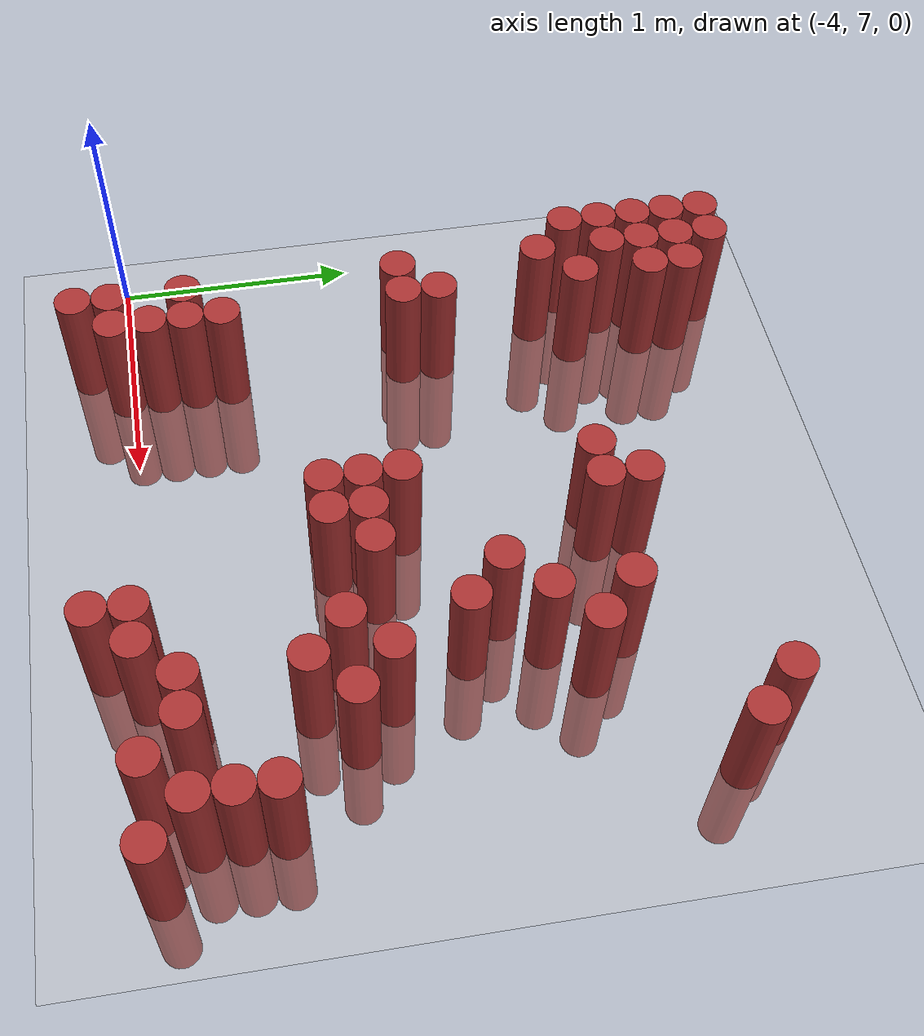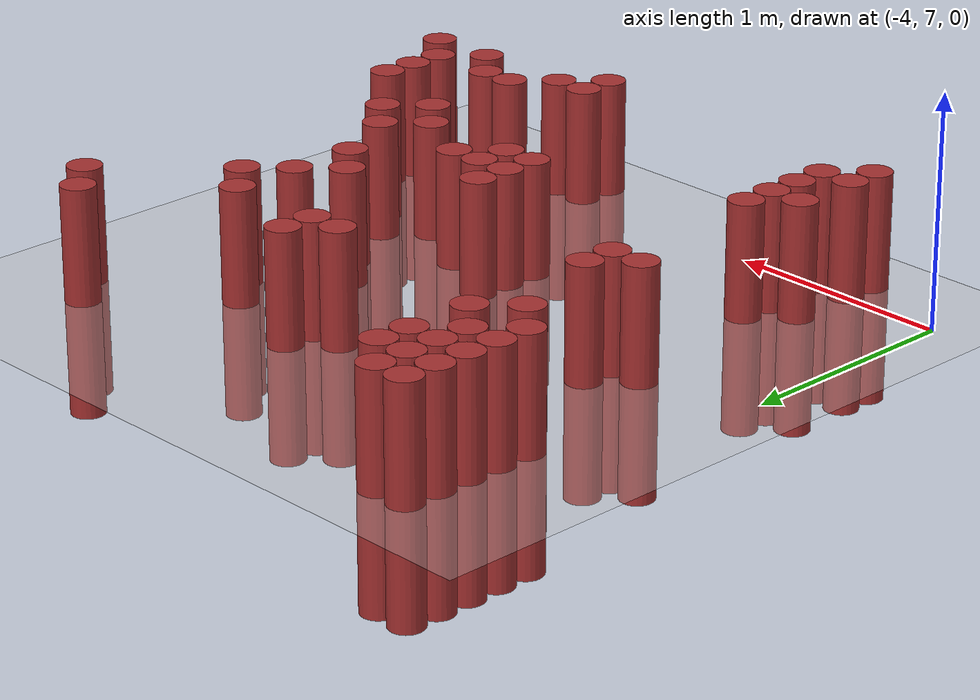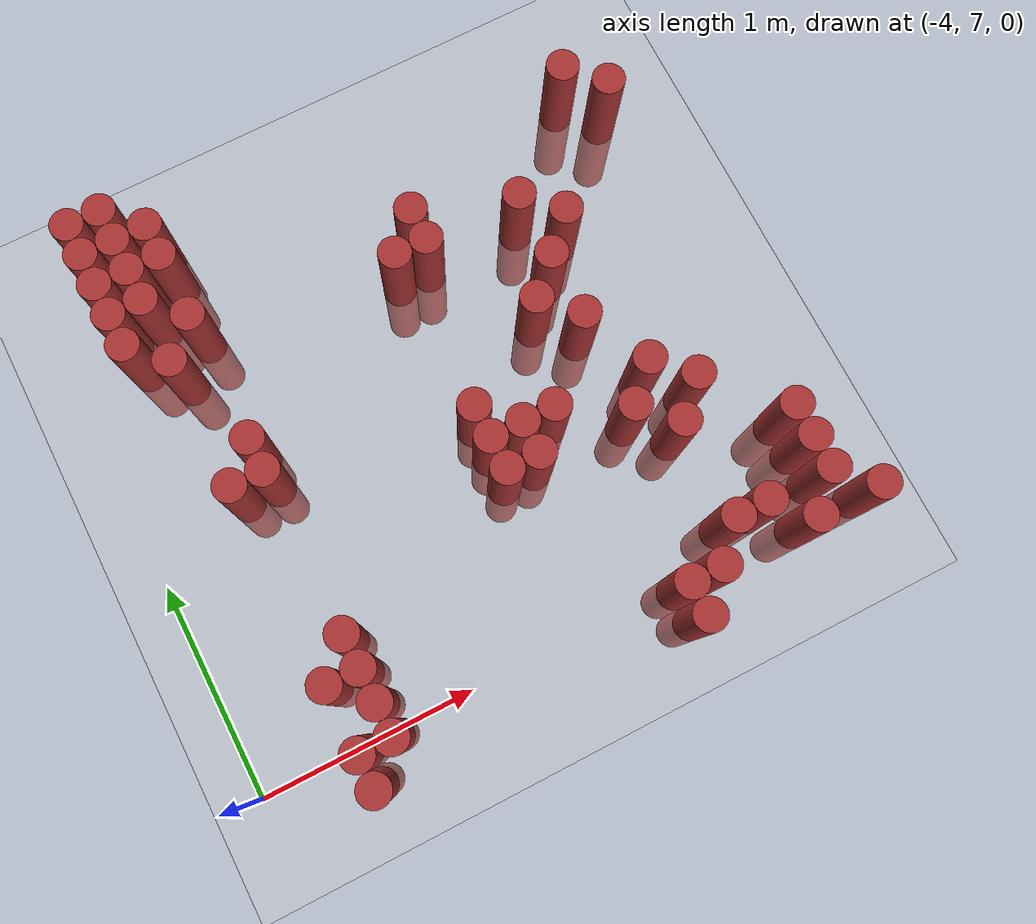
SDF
<sdf version="1.6">
 <world name="default">
  <model name="ground_plane">
   <static>1</static>
   <link name="link">
    <collision name="collision">
     <geometry><plane><normal>0 0 1</normal><size>100 100</size></plane></geometry>
     <surface><friction><ode><mu>100</mu><mu2>50</mu2></ode></friction></surface>
    </collision>
    <visual name="visual">
     <cast_shadows>0</cast_shadows>
     <geometry><plane><normal>0 0 1</normal><size>100 100</size></plane></geometry>
     <material>
      <script><uri>file://media/materials/scripts/gazebo.material</uri><name>Gazebo/Grey</name></script>
     </material>
    </visual>
   </link>
  </model>
  <model name="unit_cylinder_184">
   <static>1</static>
   <pose>-3.675000 8.925000 0.000000 0.000000 0.000000 0.000000</pose>
   <link name="link">
    <inertial>
     <mass>1</mass>
     <inertia><ixx>0.145833</ixx><ixy>0</ixy><ixz>0</ixz><iyy>0.145833</iyy><iyz>0</iyz><izz>0.125</izz></inertia>
    </inertial>
    <collision name="collision">
     <geometry><cylinder><radius>0.075000</radius><length>1</length></cylinder></geometry>
    </collision>
    <visual name="visual">
     <geometry><cylinder><radius>0.075000</radius><length>1</length></cylinder></geometry>
     <material>
      <ambient>0.648000 0.192000 0.192000 1</ambient>
      <diffuse>0.648000 0.192000 0.192000 1</diffuse>
     </material>
     <material>
      <script><name>Gazebo/Grey</name><uri>file://media/materials/scripts/gazebo.material</uri></script>
     </material>
    </visual>
   </link>
  </model>
  <model name="unit_cylinder_185">
   <static>1</static>
   <pose>-3.675000 9.075000 0.000000 0.000000 0.000000 0.000000</pose>
   <link name="link">
    <inertial>
     <mass>1</mass>
     <inertia><ixx>0.145833</ixx><ixy>0</ixy><ixz>0</ixz><iyy>0.145833</iyy><iyz>0</iyz><izz>0.125</izz></inertia>
    </inertial>
    <collision name="collision">
     <geometry><cylinder><radius>0.075000</radius><length>1</length></cylinder></geometry>
    </collision>
    <visual name="visual">
     <geometry><cylinder><radius>0.075000</radius><length>1</length></cylinder></geometry>
     <material>
      <ambient>0.648000 0.192000 0.192000 1</ambient>
      <diffuse>0.648000 0.192000 0.192000 1</diffuse>
     </material>
     <material>
      <script><name>Gazebo/Grey</name><uri>file://media/materials/scripts/gazebo.material</uri></script>
     </material>
    </visual>
   </link>
  </model>
  <model name="unit_cylinder_186">
   <static>1</static>
   <pose>-3.675000 9.225000 0.000000 0.000000 0.000000 0.000000</pose>
   <link name="link">
    <inertial>
     <mass>1</mass>
     <inertia><ixx>0.145833</ixx><ixy>0</ixy><ixz>0</ixz><iyy>0.145833</iyy><iyz>0</iyz><izz>0.125</izz></inertia>
    </inertial>
    <collision name="collision">
     <geometry><cylinder><radius>0.075000</radius><length>1</length></cylinder></geometry>
    </collision>
    <visual name="visual">
     <geometry><cylinder><radius>0.075000</radius><length>1</length></cylinder></geometry>
     <material>
      <ambient>0.648000 0.192000 0.192000 1</ambient>
      <diffuse>0.648000 0.192000 0.192000 1</diffuse>
     </material>
     <material>
      <script><name>Gazebo/Grey</name><uri>file://media/materials/scripts/gazebo.material</uri></script>
     </material>
    </visual>
   </link>
  </model>
  <model name="unit_cylinder_187">
   <static>1</static>
   <pose>-3.675000 9.375000 0.000000 0.000000 0.000000 0.000000</pose>
   <link name="link">
    <inertial>
     <mass>1</mass>
     <inertia><ixx>0.145833</ixx><ixy>0</ixy><ixz>0</ixz><iyy>0.145833</iyy><iyz>0</iyz><izz>0.125</izz></inertia>
    </inertial>
    <collision name="collision">
     <geometry><cylinder><radius>0.075000</radius><length>1</length></cylinder></geometry>
    </collision>
    <visual name="visual">
     <geometry><cylinder><radius>0.075000</radius><length>1</length></cylinder></geometry>
     <material>
      <ambient>0.648000 0.192000 0.192000 1</ambient>
      <diffuse>0.648000 0.192000 0.192000 1</diffuse>
     </material>
     <material>
      <script><name>Gazebo/Grey</name><uri>file://media/materials/scripts/gazebo.material</uri></script>
     </material>
    </visual>
   </link>
  </model>
  <model name="unit_cylinder_188">
   <static>1</static>
   <pose>-3.675000 9.525000 0.000000 0.000000 0.000000 0.000000</pose>
   <link name="link">
    <inertial>
     <mass>1</mass>
     <inertia><ixx>0.145833</ixx><ixy>0</ixy><ixz>0</ixz><iyy>0.145833</iyy><iyz>0</iyz><izz>0.125</izz></inertia>
    </inertial>
    <collision name="collision">
     <geometry><cylinder><radius>0.075000</radius><length>1</length></cylinder></geometry>
    </collision>
    <visual name="visual">
     <geometry><cylinder><radius>0.075000</radius><length>1</length></cylinder></geometry>
     <material>
      <ambient>0.648000 0.192000 0.192000 1</ambient>
      <diffuse>0.648000 0.192000 0.192000 1</diffuse>
     </material>
     <material>
      <script><name>Gazebo/Grey</name><uri>file://media/materials/scripts/gazebo.material</uri></script>
     </material>
    </visual>
   </link>
  </model>
  <model name="unit_cylinder_193">
   <static>1</static>
   <pose>-3.525000 6.825000 0.000000 0.000000 0.000000 0.000000</pose>
   <link name="link">
    <inertial>
     <mass>1</mass>
     <inertia><ixx>0.145833</ixx><ixy>0</ixy><ixz>0</ixz><iyy>0.145833</iyy><iyz>0</iyz><izz>0.125</izz></inertia>
    </inertial>
    <collision name="collision">
     <geometry><cylinder><radius>0.075000</radius><length>1</length></cylinder></geometry>
    </collision>
    <visual name="visual">
     <geometry><cylinder><radius>0.075000</radius><length>1</length></cylinder></geometry>
     <material>
      <ambient>0.648000 0.192000 0.192000 1</ambient>
      <diffuse>0.648000 0.192000 0.192000 1</diffuse>
     </material>
     <material>
      <script><name>Gazebo/Grey</name><uri>file://media/materials/scripts/gazebo.material</uri></script>
     </material>
    </visual>
   </link>
  </model>
  <model name="unit_cylinder_194">
   <static>1</static>
   <pose>-3.525000 6.975000 0.000000 0.000000 0.000000 0.000000</pose>
   <link name="link">
    <inertial>
     <mass>1</mass>
     <inertia><ixx>0.145833</ixx><ixy>0</ixy><ixz>0</ixz><iyy>0.145833</iyy><iyz>0</iyz><izz>0.125</izz></inertia>
    </inertial>
    <collision name="collision">
     <geometry><cylinder><radius>0.075000</radius><length>1</length></cylinder></geometry>
    </collision>
    <visual name="visual">
     <geometry><cylinder><radius>0.075000</radius><length>1</length></cylinder></geometry>
     <material>
      <ambient>0.648000 0.192000 0.192000 1</ambient>
      <diffuse>0.648000 0.192000 0.192000 1</diffuse>
     </material>
     <material>
      <script><name>Gazebo/Grey</name><uri>file://media/materials/scripts/gazebo.material</uri></script>
     </material>
    </visual>
   </link>
  </model>
  <model name="unit_cylinder_195">
   <static>1</static>
   <pose>-3.525000 7.275000 0.000000 0.000000 0.000000 0.000000</pose>
   <link name="link">
    <inertial>
     <mass>1</mass>
     <inertia><ixx>0.145833</ixx><ixy>0</ixy><ixz>0</ixz><iyy>0.145833</iyy><iyz>0</iyz><izz>0.125</izz></inertia>
    </inertial>
    <collision name="collision">
     <geometry><cylinder><radius>0.075000</radius><length>1</length></cylinder></geometry>
    </collision>
    <visual name="visual">
     <geometry><cylinder><radius>0.075000</radius><length>1</length></cylinder></geometry>
     <material>
      <ambient>0.648000 0.192000 0.192000 1</ambient>
      <diffuse>0.648000 0.192000 0.192000 1</diffuse>
     </material>
     <material>
      <script><name>Gazebo/Grey</name><uri>file://media/materials/scripts/gazebo.material</uri></script>
     </material>
    </visual>
   </link>
  </model>
  <model name="unit_cylinder_196">
   <static>1</static>
   <pose>-3.525000 8.175000 0.000000 0.000000 0.000000 0.000000</pose>
   <link name="link">
    <inertial>
     <mass>1</mass>
     <inertia><ixx>0.145833</ixx><ixy>0</ixy><ixz>0</ixz><iyy>0.145833</iyy><iyz>0</iyz><izz>0.125</izz></inertia>
    </inertial>
    <collision name="collision">
     <geometry><cylinder><radius>0.075000</radius><length>1</length></cylinder></geometry>
    </collision>
    <visual name="visual">
     <geometry><cylinder><radius>0.075000</radius><length>1</length></cylinder></geometry>
     <material>
      <ambient>0.648000 0.192000 0.192000 1</ambient>
      <diffuse>0.648000 0.192000 0.192000 1</diffuse>
     </material>
     <material>
      <script><name>Gazebo/Grey</name><uri>file://media/materials/scripts/gazebo.material</uri></script>
     </material>
    </visual>
   </link>
  </model>
  <model name="unit_cylinder_197">
   <static>1</static>
   <pose>-3.525000 8.775000 0.000000 0.000000 0.000000 0.000000</pose>
   <link name="link">
    <inertial>
     <mass>1</mass>
     <inertia><ixx>0.145833</ixx><ixy>0</ixy><ixz>0</ixz><iyy>0.145833</iyy><iyz>0</iyz><izz>0.125</izz></inertia>
    </inertial>
    <collision name="collision">
     <geometry><cylinder><radius>0.075000</radius><length>1</length></cylinder></geometry>
    </collision>
    <visual name="visual">
     <geometry><cylinder><radius>0.075000</radius><length>1</length></cylinder></geometry>
     <material>
      <ambient>0.648000 0.192000 0.192000 1</ambient>
      <diffuse>0.648000 0.192000 0.192000 1</diffuse>
     </material>
     <material>
      <script><name>Gazebo/Grey</name><uri>file://media/materials/scripts/gazebo.material</uri></script>
     </material>
    </visual>
   </link>
  </model>
  <model name="unit_cylinder_198">
   <static>1</static>
   <pose>-3.525000 9.075000 0.000000 0.000000 0.000000 0.000000</pose>
   <link name="link">
    <inertial>
     <mass>1</mass>
     <inertia><ixx>0.145833</ixx><ixy>0</ixy><ixz>0</ixz><iyy>0.145833</iyy><iyz>0</iyz><izz>0.125</izz></inertia>
    </inertial>
    <collision name="collision">
     <geometry><cylinder><radius>0.075000</radius><length>1</length></cylinder></geometry>
    </collision>
    <visual name="visual">
     <geometry><cylinder><radius>0.075000</radius><length>1</length></cylinder></geometry>
     <material>
      <ambient>0.648000 0.192000 0.192000 1</ambient>
      <diffuse>0.648000 0.192000 0.192000 1</diffuse>
     </material>
     <material>
      <script><name>Gazebo/Grey</name><uri>file://media/materials/scripts/gazebo.material</uri></script>
     </material>
    </visual>
   </link>
  </model>
  <model name="unit_cylinder_199">
   <static>1</static>
   <pose>-3.525000 9.225000 0.000000 0.000000 0.000000 0.000000</pose>
   <link name="link">
    <inertial>
     <mass>1</mass>
     <inertia><ixx>0.145833</ixx><ixy>0</ixy><ixz>0</ixz><iyy>0.145833</iyy><iyz>0</iyz><izz>0.125</izz></inertia>
    </inertial>
    <collision name="collision">
     <geometry><cylinder><radius>0.075000</radius><length>1</length></cylinder></geometry>
    </collision>
    <visual name="visual">
     <geometry><cylinder><radius>0.075000</radius><length>1</length></cylinder></geometry>
     <material>
      <ambient>0.648000 0.192000 0.192000 1</ambient>
      <diffuse>0.648000 0.192000 0.192000 1</diffuse>
     </material>
     <material>
      <script><name>Gazebo/Grey</name><uri>file://media/materials/scripts/gazebo.material</uri></script>
     </material>
    </visual>
   </link>
  </model>
  <model name="unit_cylinder_200">
   <static>1</static>
   <pose>-3.525000 9.375000 0.000000 0.000000 0.000000 0.000000</pose>
   <link name="link">
    <inertial>
     <mass>1</mass>
     <inertia><ixx>0.145833</ixx><ixy>0</ixy><ixz>0</ixz><iyy>0.145833</iyy><iyz>0</iyz><izz>0.125</izz></inertia>
    </inertial>
    <collision name="collision">
     <geometry><cylinder><radius>0.075000</radius><length>1</length></cylinder></geometry>
    </collision>
    <visual name="visual">
     <geometry><cylinder><radius>0.075000</radius><length>1</length></cylinder></geometry>
     <material>
      <ambient>0.648000 0.192000 0.192000 1</ambient>
      <diffuse>0.648000 0.192000 0.192000 1</diffuse>
     </material>
     <material>
      <script><name>Gazebo/Grey</name><uri>file://media/materials/scripts/gazebo.material</uri></script>
     </material>
    </visual>
   </link>
  </model>
  <model name="unit_cylinder_201">
   <static>1</static>
   <pose>-3.525000 9.525000 0.000000 0.000000 0.000000 0.000000</pose>
   <link name="link">
    <inertial>
     <mass>1</mass>
     <inertia><ixx>0.145833</ixx><ixy>0</ixy><ixz>0</ixz><iyy>0.145833</iyy><iyz>0</iyz><izz>0.125</izz></inertia>
    </inertial>
    <collision name="collision">
     <geometry><cylinder><radius>0.075000</radius><length>1</length></cylinder></geometry>
    </collision>
    <visual name="visual">
     <geometry><cylinder><radius>0.075000</radius><length>1</length></cylinder></geometry>
     <material>
      <ambient>0.648000 0.192000 0.192000 1</ambient>
      <diffuse>0.648000 0.192000 0.192000 1</diffuse>
     </material>
     <material>
      <script><name>Gazebo/Grey</name><uri>file://media/materials/scripts/gazebo.material</uri></script>
     </material>
    </visual>
   </link>
  </model>
  <model name="unit_cylinder_203">
   <static>1</static>
   <pose>-3.375000 6.975000 0.000000 0.000000 0.000000 0.000000</pose>
   <link name="link">
    <inertial>
     <mass>1</mass>
     <inertia><ixx>0.145833</ixx><ixy>0</ixy><ixz>0</ixz><iyy>0.145833</iyy><iyz>0</iyz><izz>0.125</izz></inertia>
    </inertial>
    <collision name="collision">
     <geometry><cylinder><radius>0.075000</radius><length>1</length></cylinder></geometry>
    </collision>
    <visual name="visual">
     <geometry><cylinder><radius>0.075000</radius><length>1</length></cylinder></geometry>
     <material>
      <ambient>0.648000 0.192000 0.192000 1</ambient>
      <diffuse>0.648000 0.192000 0.192000 1</diffuse>
     </material>
     <material>
      <script><name>Gazebo/Grey</name><uri>file://media/materials/scripts/gazebo.material</uri></script>
     </material>
    </visual>
   </link>
  </model>
  <model name="unit_cylinder_204">
   <static>1</static>
   <pose>-3.375000 7.125000 0.000000 0.000000 0.000000 0.000000</pose>
   <link name="link">
    <inertial>
     <mass>1</mass>
     <inertia><ixx>0.145833</ixx><ixy>0</ixy><ixz>0</ixz><iyy>0.145833</iyy><iyz>0</iyz><izz>0.125</izz></inertia>
    </inertial>
    <collision name="collision">
     <geometry><cylinder><radius>0.075000</radius><length>1</length></cylinder></geometry>
    </collision>
    <visual name="visual">
     <geometry><cylinder><radius>0.075000</radius><length>1</length></cylinder></geometry>
     <material>
      <ambient>0.648000 0.192000 0.192000 1</ambient>
      <diffuse>0.648000 0.192000 0.192000 1</diffuse>
     </material>
     <material>
      <script><name>Gazebo/Grey</name><uri>file://media/materials/scripts/gazebo.material</uri></script>
     </material>
    </visual>
   </link>
  </model>
  <model name="unit_cylinder_205">
   <static>1</static>
   <pose>-3.375000 7.275000 0.000000 0.000000 0.000000 0.000000</pose>
   <link name="link">
    <inertial>
     <mass>1</mass>
     <inertia><ixx>0.145833</ixx><ixy>0</ixy><ixz>0</ixz><iyy>0.145833</iyy><iyz>0</iyz><izz>0.125</izz></inertia>
    </inertial>
    <collision name="collision">
     <geometry><cylinder><radius>0.075000</radius><length>1</length></cylinder></geometry>
    </collision>
    <visual name="visual">
     <geometry><cylinder><radius>0.075000</radius><length>1</length></cylinder></geometry>
     <material>
      <ambient>0.648000 0.192000 0.192000 1</ambient>
      <diffuse>0.648000 0.192000 0.192000 1</diffuse>
     </material>
     <material>
      <script><name>Gazebo/Grey</name><uri>file://media/materials/scripts/gazebo.material</uri></script>
     </material>
    </visual>
   </link>
  </model>
  <model name="unit_cylinder_206">
   <static>1</static>
   <pose>-3.375000 7.425000 0.000000 0.000000 0.000000 0.000000</pose>
   <link name="link">
    <inertial>
     <mass>1</mass>
     <inertia><ixx>0.145833</ixx><ixy>0</ixy><ixz>0</ixz><iyy>0.145833</iyy><iyz>0</iyz><izz>0.125</izz></inertia>
    </inertial>
    <collision name="collision">
     <geometry><cylinder><radius>0.075000</radius><length>1</length></cylinder></geometry>
    </collision>
    <visual name="visual">
     <geometry><cylinder><radius>0.075000</radius><length>1</length></cylinder></geometry>
     <material>
      <ambient>0.648000 0.192000 0.192000 1</ambient>
      <diffuse>0.648000 0.192000 0.192000 1</diffuse>
     </material>
     <material>
      <script><name>Gazebo/Grey</name><uri>file://media/materials/scripts/gazebo.material</uri></script>
     </material>
    </visual>
   </link>
  </model>
  <model name="unit_cylinder_207">
   <static>1</static>
   <pose>-3.375000 8.175000 0.000000 0.000000 0.000000 0.000000</pose>
   <link name="link">
    <inertial>
     <mass>1</mass>
     <inertia><ixx>0.145833</ixx><ixy>0</ixy><ixz>0</ixz><iyy>0.145833</iyy><iyz>0</iyz><izz>0.125</izz></inertia>
    </inertial>
    <collision name="collision">
     <geometry><cylinder><radius>0.075000</radius><length>1</length></cylinder></geometry>
    </collision>
    <visual name="visual">
     <geometry><cylinder><radius>0.075000</radius><length>1</length></cylinder></geometry>
     <material>
      <ambient>0.648000 0.192000 0.192000 1</ambient>
      <diffuse>0.648000 0.192000 0.192000 1</diffuse>
     </material>
     <material>
      <script><name>Gazebo/Grey</name><uri>file://media/materials/scripts/gazebo.material</uri></script>
     </material>
    </visual>
   </link>
  </model>
  <model name="unit_cylinder_208">
   <static>1</static>
   <pose>-3.375000 8.325000 0.000000 0.000000 0.000000 0.000000</pose>
   <link name="link">
    <inertial>
     <mass>1</mass>
     <inertia><ixx>0.145833</ixx><ixy>0</ixy><ixz>0</ixz><iyy>0.145833</iyy><iyz>0</iyz><izz>0.125</izz></inertia>
    </inertial>
    <collision name="collision">
     <geometry><cylinder><radius>0.075000</radius><length>1</length></cylinder></geometry>
    </collision>
    <visual name="visual">
     <geometry><cylinder><radius>0.075000</radius><length>1</length></cylinder></geometry>
     <material>
      <ambient>0.648000 0.192000 0.192000 1</ambient>
      <diffuse>0.648000 0.192000 0.192000 1</diffuse>
     </material>
     <material>
      <script><name>Gazebo/Grey</name><uri>file://media/materials/scripts/gazebo.material</uri></script>
     </material>
    </visual>
   </link>
  </model>
  <model name="unit_cylinder_209">
   <static>1</static>
   <pose>-3.375000 8.925000 0.000000 0.000000 0.000000 0.000000</pose>
   <link name="link">
    <inertial>
     <mass>1</mass>
     <inertia><ixx>0.145833</ixx><ixy>0</ixy><ixz>0</ixz><iyy>0.145833</iyy><iyz>0</iyz><izz>0.125</izz></inertia>
    </inertial>
    <collision name="collision">
     <geometry><cylinder><radius>0.075000</radius><length>1</length></cylinder></geometry>
    </collision>
    <visual name="visual">
     <geometry><cylinder><radius>0.075000</radius><length>1</length></cylinder></geometry>
     <material>
      <ambient>0.648000 0.192000 0.192000 1</ambient>
      <diffuse>0.648000 0.192000 0.192000 1</diffuse>
     </material>
     <material>
      <script><name>Gazebo/Grey</name><uri>file://media/materials/scripts/gazebo.material</uri></script>
     </material>
    </visual>
   </link>
  </model>
  <model name="unit_cylinder_210">
   <static>1</static>
   <pose>-3.375000 9.225000 0.000000 0.000000 0.000000 0.000000</pose>
   <link name="link">
    <inertial>
     <mass>1</mass>
     <inertia><ixx>0.145833</ixx><ixy>0</ixy><ixz>0</ixz><iyy>0.145833</iyy><iyz>0</iyz><izz>0.125</izz></inertia>
    </inertial>
    <collision name="collision">
     <geometry><cylinder><radius>0.075000</radius><length>1</length></cylinder></geometry>
    </collision>
    <visual name="visual">
     <geometry><cylinder><radius>0.075000</radius><length>1</length></cylinder></geometry>
     <material>
      <ambient>0.648000 0.192000 0.192000 1</ambient>
      <diffuse>0.648000 0.192000 0.192000 1</diffuse>
     </material>
     <material>
      <script><name>Gazebo/Grey</name><uri>file://media/materials/scripts/gazebo.material</uri></script>
     </material>
    </visual>
   </link>
  </model>
  <model name="unit_cylinder_211">
   <static>1</static>
   <pose>-3.375000 9.375000 0.000000 0.000000 0.000000 0.000000</pose>
   <link name="link">
    <inertial>
     <mass>1</mass>
     <inertia><ixx>0.145833</ixx><ixy>0</ixy><ixz>0</ixz><iyy>0.145833</iyy><iyz>0</iyz><izz>0.125</izz></inertia>
    </inertial>
    <collision name="collision">
     <geometry><cylinder><radius>0.075000</radius><length>1</length></cylinder></geometry>
    </collision>
    <visual name="visual">
     <geometry><cylinder><radius>0.075000</radius><length>1</length></cylinder></geometry>
     <material>
      <ambient>0.648000 0.192000 0.192000 1</ambient>
      <diffuse>0.648000 0.192000 0.192000 1</diffuse>
     </material>
     <material>
      <script><name>Gazebo/Grey</name><uri>file://media/materials/scripts/gazebo.material</uri></script>
     </material>
    </visual>
   </link>
  </model>
  <model name="unit_cylinder_218">
   <static>1</static>
   <pose>-2.475000 7.725000 0.000000 0.000000 0.000000 0.000000</pose>
   <link name="link">
    <inertial>
     <mass>1</mass>
     <inertia><ixx>0.145833</ixx><ixy>0</ixy><ixz>0</ixz><iyy>0.145833</iyy><iyz>0</iyz><izz>0.125</izz></inertia>
    </inertial>
    <collision name="collision">
     <geometry><cylinder><radius>0.075000</radius><length>1</length></cylinder></geometry>
    </collision>
    <visual name="visual">
     <geometry><cylinder><radius>0.075000</radius><length>1</length></cylinder></geometry>
     <material>
      <ambient>0.648000 0.192000 0.192000 1</ambient>
      <diffuse>0.648000 0.192000 0.192000 1</diffuse>
     </material>
     <material>
      <script><name>Gazebo/Grey</name><uri>file://media/materials/scripts/gazebo.material</uri></script>
     </material>
    </visual>
   </link>
  </model>
  <model name="unit_cylinder_219">
   <static>1</static>
   <pose>-2.475000 7.875000 0.000000 0.000000 0.000000 0.000000</pose>
   <link name="link">
    <inertial>
     <mass>1</mass>
     <inertia><ixx>0.145833</ixx><ixy>0</ixy><ixz>0</ixz><iyy>0.145833</iyy><iyz>0</iyz><izz>0.125</izz></inertia>
    </inertial>
    <collision name="collision">
     <geometry><cylinder><radius>0.075000</radius><length>1</length></cylinder></geometry>
    </collision>
    <visual name="visual">
     <geometry><cylinder><radius>0.075000</radius><length>1</length></cylinder></geometry>
     <material>
      <ambient>0.648000 0.192000 0.192000 1</ambient>
      <diffuse>0.648000 0.192000 0.192000 1</diffuse>
     </material>
     <material>
      <script><name>Gazebo/Grey</name><uri>file://media/materials/scripts/gazebo.material</uri></script>
     </material>
    </visual>
   </link>
  </model>
  <model name="unit_cylinder_220">
   <static>1</static>
   <pose>-2.475000 8.025000 0.000000 0.000000 0.000000 0.000000</pose>
   <link name="link">
    <inertial>
     <mass>1</mass>
     <inertia><ixx>0.145833</ixx><ixy>0</ixy><ixz>0</ixz><iyy>0.145833</iyy><iyz>0</iyz><izz>0.125</izz></inertia>
    </inertial>
    <collision name="collision">
     <geometry><cylinder><radius>0.075000</radius><length>1</length></cylinder></geometry>
    </collision>
    <visual name="visual">
     <geometry><cylinder><radius>0.075000</radius><length>1</length></cylinder></geometry>
     <material>
      <ambient>0.648000 0.192000 0.192000 1</ambient>
      <diffuse>0.648000 0.192000 0.192000 1</diffuse>
     </material>
     <material>
      <script><name>Gazebo/Grey</name><uri>file://media/materials/scripts/gazebo.material</uri></script>
     </material>
    </visual>
   </link>
  </model>
  <model name="unit_cylinder_221">
   <static>1</static>
   <pose>-2.475000 8.775000 0.000000 0.000000 0.000000 0.000000</pose>
   <link name="link">
    <inertial>
     <mass>1</mass>
     <inertia><ixx>0.145833</ixx><ixy>0</ixy><ixz>0</ixz><iyy>0.145833</iyy><iyz>0</iyz><izz>0.125</izz></inertia>
    </inertial>
    <collision name="collision">
     <geometry><cylinder><radius>0.075000</radius><length>1</length></cylinder></geometry>
    </collision>
    <visual name="visual">
     <geometry><cylinder><radius>0.075000</radius><length>1</length></cylinder></geometry>
     <material>
      <ambient>0.648000 0.192000 0.192000 1</ambient>
      <diffuse>0.648000 0.192000 0.192000 1</diffuse>
     </material>
     <material>
      <script><name>Gazebo/Grey</name><uri>file://media/materials/scripts/gazebo.material</uri></script>
     </material>
    </visual>
   </link>
  </model>
  <model name="unit_cylinder_223">
   <static>1</static>
   <pose>-2.325000 7.725000 0.000000 0.000000 0.000000 0.000000</pose>
   <link name="link">
    <inertial>
     <mass>1</mass>
     <inertia><ixx>0.145833</ixx><ixy>0</ixy><ixz>0</ixz><iyy>0.145833</iyy><iyz>0</iyz><izz>0.125</izz></inertia>
    </inertial>
    <collision name="collision">
     <geometry><cylinder><radius>0.075000</radius><length>1</length></cylinder></geometry>
    </collision>
    <visual name="visual">
     <geometry><cylinder><radius>0.075000</radius><length>1</length></cylinder></geometry>
     <material>
      <ambient>0.648000 0.192000 0.192000 1</ambient>
      <diffuse>0.648000 0.192000 0.192000 1</diffuse>
     </material>
     <material>
      <script><name>Gazebo/Grey</name><uri>file://media/materials/scripts/gazebo.material</uri></script>
     </material>
    </visual>
   </link>
  </model>
  <model name="unit_cylinder_224">
   <static>1</static>
   <pose>-2.325000 7.875000 0.000000 0.000000 0.000000 0.000000</pose>
   <link name="link">
    <inertial>
     <mass>1</mass>
     <inertia><ixx>0.145833</ixx><ixy>0</ixy><ixz>0</ixz><iyy>0.145833</iyy><iyz>0</iyz><izz>0.125</izz></inertia>
    </inertial>
    <collision name="collision">
     <geometry><cylinder><radius>0.075000</radius><length>1</length></cylinder></geometry>
    </collision>
    <visual name="visual">
     <geometry><cylinder><radius>0.075000</radius><length>1</length></cylinder></geometry>
     <material>
      <ambient>0.648000 0.192000 0.192000 1</ambient>
      <diffuse>0.648000 0.192000 0.192000 1</diffuse>
     </material>
     <material>
      <script><name>Gazebo/Grey</name><uri>file://media/materials/scripts/gazebo.material</uri></script>
     </material>
    </visual>
   </link>
  </model>
  <model name="unit_cylinder_225">
   <static>1</static>
   <pose>-2.325000 8.775000 0.000000 0.000000 0.000000 0.000000</pose>
   <link name="link">
    <inertial>
     <mass>1</mass>
     <inertia><ixx>0.145833</ixx><ixy>0</ixy><ixz>0</ixz><iyy>0.145833</iyy><iyz>0</iyz><izz>0.125</izz></inertia>
    </inertial>
    <collision name="collision">
     <geometry><cylinder><radius>0.075000</radius><length>1</length></cylinder></geometry>
    </collision>
    <visual name="visual">
     <geometry><cylinder><radius>0.075000</radius><length>1</length></cylinder></geometry>
     <material>
      <ambient>0.648000 0.192000 0.192000 1</ambient>
      <diffuse>0.648000 0.192000 0.192000 1</diffuse>
     </material>
     <material>
      <script><name>Gazebo/Grey</name><uri>file://media/materials/scripts/gazebo.material</uri></script>
     </material>
    </visual>
   </link>
  </model>
  <model name="unit_cylinder_226">
   <static>1</static>
   <pose>-2.325000 8.925000 0.000000 0.000000 0.000000 0.000000</pose>
   <link name="link">
    <inertial>
     <mass>1</mass>
     <inertia><ixx>0.145833</ixx><ixy>0</ixy><ixz>0</ixz><iyy>0.145833</iyy><iyz>0</iyz><izz>0.125</izz></inertia>
    </inertial>
    <collision name="collision">
     <geometry><cylinder><radius>0.075000</radius><length>1</length></cylinder></geometry>
    </collision>
    <visual name="visual">
     <geometry><cylinder><radius>0.075000</radius><length>1</length></cylinder></geometry>
     <material>
      <ambient>0.648000 0.192000 0.192000 1</ambient>
      <diffuse>0.648000 0.192000 0.192000 1</diffuse>
     </material>
     <material>
      <script><name>Gazebo/Grey</name><uri>file://media/materials/scripts/gazebo.material</uri></script>
     </material>
    </visual>
   </link>
  </model>
  <model name="unit_cylinder_228">
   <static>1</static>
   <pose>-2.175000 7.875000 0.000000 0.000000 0.000000 0.000000</pose>
   <link name="link">
    <inertial>
     <mass>1</mass>
     <inertia><ixx>0.145833</ixx><ixy>0</ixy><ixz>0</ixz><iyy>0.145833</iyy><iyz>0</iyz><izz>0.125</izz></inertia>
    </inertial>
    <collision name="collision">
     <geometry><cylinder><radius>0.075000</radius><length>1</length></cylinder></geometry>
    </collision>
    <visual name="visual">
     <geometry><cylinder><radius>0.075000</radius><length>1</length></cylinder></geometry>
     <material>
      <ambient>0.648000 0.192000 0.192000 1</ambient>
      <diffuse>0.648000 0.192000 0.192000 1</diffuse>
     </material>
     <material>
      <script><name>Gazebo/Grey</name><uri>file://media/materials/scripts/gazebo.material</uri></script>
     </material>
    </visual>
   </link>
  </model>
  <model name="unit_cylinder_229">
   <static>1</static>
   <pose>-2.025000 6.825000 0.000000 0.000000 0.000000 0.000000</pose>
   <link name="link">
    <inertial>
     <mass>1</mass>
     <inertia><ixx>0.145833</ixx><ixy>0</ixy><ixz>0</ixz><iyy>0.145833</iyy><iyz>0</iyz><izz>0.125</izz></inertia>
    </inertial>
    <collision name="collision">
     <geometry><cylinder><radius>0.075000</radius><length>1</length></cylinder></geometry>
    </collision>
    <visual name="visual">
     <geometry><cylinder><radius>0.075000</radius><length>1</length></cylinder></geometry>
     <material>
      <ambient>0.648000 0.192000 0.192000 1</ambient>
      <diffuse>0.648000 0.192000 0.192000 1</diffuse>
     </material>
     <material>
      <script><name>Gazebo/Grey</name><uri>file://media/materials/scripts/gazebo.material</uri></script>
     </material>
    </visual>
   </link>
  </model>
  <model name="unit_cylinder_230">
   <static>1</static>
   <pose>-2.025000 6.975000 0.000000 0.000000 0.000000 0.000000</pose>
   <link name="link">
    <inertial>
     <mass>1</mass>
     <inertia><ixx>0.145833</ixx><ixy>0</ixy><ixz>0</ixz><iyy>0.145833</iyy><iyz>0</iyz><izz>0.125</izz></inertia>
    </inertial>
    <collision name="collision">
     <geometry><cylinder><radius>0.075000</radius><length>1</length></cylinder></geometry>
    </collision>
    <visual name="visual">
     <geometry><cylinder><radius>0.075000</radius><length>1</length></cylinder></geometry>
     <material>
      <ambient>0.648000 0.192000 0.192000 1</ambient>
      <diffuse>0.648000 0.192000 0.192000 1</diffuse>
     </material>
     <material>
      <script><name>Gazebo/Grey</name><uri>file://media/materials/scripts/gazebo.material</uri></script>
     </material>
    </visual>
   </link>
  </model>
  <model name="unit_cylinder_231">
   <static>1</static>
   <pose>-2.025000 8.325000 0.000000 0.000000 0.000000 0.000000</pose>
   <link name="link">
    <inertial>
     <mass>1</mass>
     <inertia><ixx>0.145833</ixx><ixy>0</ixy><ixz>0</ixz><iyy>0.145833</iyy><iyz>0</iyz><izz>0.125</izz></inertia>
    </inertial>
    <collision name="collision">
     <geometry><cylinder><radius>0.075000</radius><length>1</length></cylinder></geometry>
    </collision>
    <visual name="visual">
     <geometry><cylinder><radius>0.075000</radius><length>1</length></cylinder></geometry>
     <material>
      <ambient>0.648000 0.192000 0.192000 1</ambient>
      <diffuse>0.648000 0.192000 0.192000 1</diffuse>
     </material>
     <material>
      <script><name>Gazebo/Grey</name><uri>file://media/materials/scripts/gazebo.material</uri></script>
     </material>
    </visual>
   </link>
  </model>
  <model name="unit_cylinder_232">
   <static>1</static>
   <pose>-1.875000 6.975000 0.000000 0.000000 0.000000 0.000000</pose>
   <link name="link">
    <inertial>
     <mass>1</mass>
     <inertia><ixx>0.145833</ixx><ixy>0</ixy><ixz>0</ixz><iyy>0.145833</iyy><iyz>0</iyz><izz>0.125</izz></inertia>
    </inertial>
    <collision name="collision">
     <geometry><cylinder><radius>0.075000</radius><length>1</length></cylinder></geometry>
    </collision>
    <visual name="visual">
     <geometry><cylinder><radius>0.075000</radius><length>1</length></cylinder></geometry>
     <material>
      <ambient>0.648000 0.192000 0.192000 1</ambient>
      <diffuse>0.648000 0.192000 0.192000 1</diffuse>
     </material>
     <material>
      <script><name>Gazebo/Grey</name><uri>file://media/materials/scripts/gazebo.material</uri></script>
     </material>
    </visual>
   </link>
  </model>
  <model name="unit_cylinder_233">
   <static>1</static>
   <pose>-1.875000 7.725000 0.000000 0.000000 0.000000 0.000000</pose>
   <link name="link">
    <inertial>
     <mass>1</mass>
     <inertia><ixx>0.145833</ixx><ixy>0</ixy><ixz>0</ixz><iyy>0.145833</iyy><iyz>0</iyz><izz>0.125</izz></inertia>
    </inertial>
    <collision name="collision">
     <geometry><cylinder><radius>0.075000</radius><length>1</length></cylinder></geometry>
    </collision>
    <visual name="visual">
     <geometry><cylinder><radius>0.075000</radius><length>1</length></cylinder></geometry>
     <material>
      <ambient>0.648000 0.192000 0.192000 1</ambient>
      <diffuse>0.648000 0.192000 0.192000 1</diffuse>
     </material>
     <material>
      <script><name>Gazebo/Grey</name><uri>file://media/materials/scripts/gazebo.material</uri></script>
     </material>
    </visual>
   </link>
  </model>
  <model name="unit_cylinder_234">
   <static>1</static>
   <pose>-1.875000 8.175000 0.000000 0.000000 0.000000 0.000000</pose>
   <link name="link">
    <inertial>
     <mass>1</mass>
     <inertia><ixx>0.145833</ixx><ixy>0</ixy><ixz>0</ixz><iyy>0.145833</iyy><iyz>0</iyz><izz>0.125</izz></inertia>
    </inertial>
    <collision name="collision">
     <geometry><cylinder><radius>0.075000</radius><length>1</length></cylinder></geometry>
    </collision>
    <visual name="visual">
     <geometry><cylinder><radius>0.075000</radius><length>1</length></cylinder></geometry>
     <material>
      <ambient>0.648000 0.192000 0.192000 1</ambient>
      <diffuse>0.648000 0.192000 0.192000 1</diffuse>
     </material>
     <material>
      <script><name>Gazebo/Grey</name><uri>file://media/materials/scripts/gazebo.material</uri></script>
     </material>
    </visual>
   </link>
  </model>
  <model name="unit_cylinder_235">
   <static>1</static>
   <pose>-1.875000 8.475000 0.000000 0.000000 0.000000 0.000000</pose>
   <link name="link">
    <inertial>
     <mass>1</mass>
     <inertia><ixx>0.145833</ixx><ixy>0</ixy><ixz>0</ixz><iyy>0.145833</iyy><iyz>0</iyz><izz>0.125</izz></inertia>
    </inertial>
    <collision name="collision">
     <geometry><cylinder><radius>0.075000</radius><length>1</length></cylinder></geometry>
    </collision>
    <visual name="visual">
     <geometry><cylinder><radius>0.075000</radius><length>1</length></cylinder></geometry>
     <material>
      <ambient>0.648000 0.192000 0.192000 1</ambient>
      <diffuse>0.648000 0.192000 0.192000 1</diffuse>
     </material>
     <material>
      <script><name>Gazebo/Grey</name><uri>file://media/materials/scripts/gazebo.material</uri></script>
     </material>
    </visual>
   </link>
  </model>
  <model name="unit_cylinder_236">
   <static>1</static>
   <pose>-1.875000 8.775000 0.000000 0.000000 0.000000 0.000000</pose>
   <link name="link">
    <inertial>
     <mass>1</mass>
     <inertia><ixx>0.145833</ixx><ixy>0</ixy><ixz>0</ixz><iyy>0.145833</iyy><iyz>0</iyz><izz>0.125</izz></inertia>
    </inertial>
    <collision name="collision">
     <geometry><cylinder><radius>0.075000</radius><length>1</length></cylinder></geometry>
    </collision>
    <visual name="visual">
     <geometry><cylinder><radius>0.075000</radius><length>1</length></cylinder></geometry>
     <material>
      <ambient>0.648000 0.192000 0.192000 1</ambient>
      <diffuse>0.648000 0.192000 0.192000 1</diffuse>
     </material>
     <material>
      <script><name>Gazebo/Grey</name><uri>file://media/materials/scripts/gazebo.material</uri></script>
     </material>
    </visual>
   </link>
  </model>
  <model name="unit_cylinder_237">
   <static>1</static>
   <pose>-1.725000 7.125000 0.000000 0.000000 0.000000 0.000000</pose>
   <link name="link">
    <inertial>
     <mass>1</mass>
     <inertia><ixx>0.145833</ixx><ixy>0</ixy><ixz>0</ixz><iyy>0.145833</iyy><iyz>0</iyz><izz>0.125</izz></inertia>
    </inertial>
    <collision name="collision">
     <geometry><cylinder><radius>0.075000</radius><length>1</length></cylinder></geometry>
    </collision>
    <visual name="visual">
     <geometry><cylinder><radius>0.075000</radius><length>1</length></cylinder></geometry>
     <material>
      <ambient>0.648000 0.192000 0.192000 1</ambient>
      <diffuse>0.648000 0.192000 0.192000 1</diffuse>
     </material>
     <material>
      <script><name>Gazebo/Grey</name><uri>file://media/materials/scripts/gazebo.material</uri></script>
     </material>
    </visual>
   </link>
  </model>
  <model name="unit_cylinder_238">
   <static>1</static>
   <pose>-1.725000 7.575000 0.000000 0.000000 0.000000 0.000000</pose>
   <link name="link">
    <inertial>
     <mass>1</mass>
     <inertia><ixx>0.145833</ixx><ixy>0</ixy><ixz>0</ixz><iyy>0.145833</iyy><iyz>0</iyz><izz>0.125</izz></inertia>
    </inertial>
    <collision name="collision">
     <geometry><cylinder><radius>0.075000</radius><length>1</length></cylinder></geometry>
    </collision>
    <visual name="visual">
     <geometry><cylinder><radius>0.075000</radius><length>1</length></cylinder></geometry>
     <material>
      <ambient>0.648000 0.192000 0.192000 1</ambient>
      <diffuse>0.648000 0.192000 0.192000 1</diffuse>
     </material>
     <material>
      <script><name>Gazebo/Grey</name><uri>file://media/materials/scripts/gazebo.material</uri></script>
     </material>
    </visual>
   </link>
  </model>
  <model name="unit_cylinder_239">
   <static>1</static>
   <pose>-1.725000 7.875000 0.000000 0.000000 0.000000 0.000000</pose>
   <link name="link">
    <inertial>
     <mass>1</mass>
     <inertia><ixx>0.145833</ixx><ixy>0</ixy><ixz>0</ixz><iyy>0.145833</iyy><iyz>0</iyz><izz>0.125</izz></inertia>
    </inertial>
    <collision name="collision">
     <geometry><cylinder><radius>0.075000</radius><length>1</length></cylinder></geometry>
    </collision>
    <visual name="visual">
     <geometry><cylinder><radius>0.075000</radius><length>1</length></cylinder></geometry>
     <material>
      <ambient>0.648000 0.192000 0.192000 1</ambient>
      <diffuse>0.648000 0.192000 0.192000 1</diffuse>
     </material>
     <material>
      <script><name>Gazebo/Grey</name><uri>file://media/materials/scripts/gazebo.material</uri></script>
     </material>
    </visual>
   </link>
  </model>
  <model name="unit_cylinder_240">
   <static>1</static>
   <pose>-1.725000 8.625000 0.000000 0.000000 0.000000 0.000000</pose>
   <link name="link">
    <inertial>
     <mass>1</mass>
     <inertia><ixx>0.145833</ixx><ixy>0</ixy><ixz>0</ixz><iyy>0.145833</iyy><iyz>0</iyz><izz>0.125</izz></inertia>
    </inertial>
    <collision name="collision">
     <geometry><cylinder><radius>0.075000</radius><length>1</length></cylinder></geometry>
    </collision>
    <visual name="visual">
     <geometry><cylinder><radius>0.075000</radius><length>1</length></cylinder></geometry>
     <material>
      <ambient>0.648000 0.192000 0.192000 1</ambient>
      <diffuse>0.648000 0.192000 0.192000 1</diffuse>
     </material>
     <material>
      <script><name>Gazebo/Grey</name><uri>file://media/materials/scripts/gazebo.material</uri></script>
     </material>
    </visual>
   </link>
  </model>
  <model name="unit_cylinder_241">
   <static>1</static>
   <pose>-1.575000 7.125000 0.000000 0.000000 0.000000 0.000000</pose>
   <link name="link">
    <inertial>
     <mass>1</mass>
     <inertia><ixx>0.145833</ixx><ixy>0</ixy><ixz>0</ixz><iyy>0.145833</iyy><iyz>0</iyz><izz>0.125</izz></inertia>
    </inertial>
    <collision name="collision">
     <geometry><cylinder><radius>0.075000</radius><length>1</length></cylinder></geometry>
    </collision>
    <visual name="visual">
     <geometry><cylinder><radius>0.075000</radius><length>1</length></cylinder></geometry>
     <material>
      <ambient>0.648000 0.192000 0.192000 1</ambient>
      <diffuse>0.648000 0.192000 0.192000 1</diffuse>
     </material>
     <material>
      <script><name>Gazebo/Grey</name><uri>file://media/materials/scripts/gazebo.material</uri></script>
     </material>
    </visual>
   </link>
  </model>
  <model name="unit_cylinder_242">
   <static>1</static>
   <pose>-1.575000 7.725000 0.000000 0.000000 0.000000 0.000000</pose>
   <link name="link">
    <inertial>
     <mass>1</mass>
     <inertia><ixx>0.145833</ixx><ixy>0</ixy><ixz>0</ixz><iyy>0.145833</iyy><iyz>0</iyz><izz>0.125</izz></inertia>
    </inertial>
    <collision name="collision">
     <geometry><cylinder><radius>0.075000</radius><length>1</length></cylinder></geometry>
    </collision>
    <visual name="visual">
     <geometry><cylinder><radius>0.075000</radius><length>1</length></cylinder></geometry>
     <material>
      <ambient>0.648000 0.192000 0.192000 1</ambient>
      <diffuse>0.648000 0.192000 0.192000 1</diffuse>
     </material>
     <material>
      <script><name>Gazebo/Grey</name><uri>file://media/materials/scripts/gazebo.material</uri></script>
     </material>
    </visual>
   </link>
  </model>
  <model name="unit_cylinder_243">
   <static>1</static>
   <pose>-1.425000 6.975000 0.000000 0.000000 0.000000 0.000000</pose>
   <link name="link">
    <inertial>
     <mass>1</mass>
     <inertia><ixx>0.145833</ixx><ixy>0</ixy><ixz>0</ixz><iyy>0.145833</iyy><iyz>0</iyz><izz>0.125</izz></inertia>
    </inertial>
    <collision name="collision">
     <geometry><cylinder><radius>0.075000</radius><length>1</length></cylinder></geometry>
    </collision>
    <visual name="visual">
     <geometry><cylinder><radius>0.075000</radius><length>1</length></cylinder></geometry>
     <material>
      <ambient>0.648000 0.192000 0.192000 1</ambient>
      <diffuse>0.648000 0.192000 0.192000 1</diffuse>
     </material>
     <material>
      <script><name>Gazebo/Grey</name><uri>file://media/materials/scripts/gazebo.material</uri></script>
     </material>
    </visual>
   </link>
  </model>
  <model name="unit_cylinder_244">
   <static>1</static>
   <pose>-1.425000 9.225000 0.000000 0.000000 0.000000 0.000000</pose>
   <link name="link">
    <inertial>
     <mass>1</mass>
     <inertia><ixx>0.145833</ixx><ixy>0</ixy><ixz>0</ixz><iyy>0.145833</iyy><iyz>0</iyz><izz>0.125</izz></inertia>
    </inertial>
    <collision name="collision">
     <geometry><cylinder><radius>0.075000</radius><length>1</length></cylinder></geometry>
    </collision>
    <visual name="visual">
     <geometry><cylinder><radius>0.075000</radius><length>1</length></cylinder></geometry>
     <material>
      <ambient>0.648000 0.192000 0.192000 1</ambient>
      <diffuse>0.648000 0.192000 0.192000 1</diffuse>
     </material>
     <material>
      <script><name>Gazebo/Grey</name><uri>file://media/materials/scripts/gazebo.material</uri></script>
     </material>
    </visual>
   </link>
  </model>
  <model name="unit_cylinder_246">
   <static>1</static>
   <pose>-1.275000 7.125000 0.000000 0.000000 0.000000 0.000000</pose>
   <link name="link">
    <inertial>
     <mass>1</mass>
     <inertia><ixx>0.145833</ixx><ixy>0</ixy><ixz>0</ixz><iyy>0.145833</iyy><iyz>0</iyz><izz>0.125</izz></inertia>
    </inertial>
    <collision name="collision">
     <geometry><cylinder><radius>0.075000</radius><length>1</length></cylinder></geometry>
    </collision>
    <visual name="visual">
     <geometry><cylinder><radius>0.075000</radius><length>1</length></cylinder></geometry>
     <material>
      <ambient>0.648000 0.192000 0.192000 1</ambient>
      <diffuse>0.648000 0.192000 0.192000 1</diffuse>
     </material>
     <material>
      <script><name>Gazebo/Grey</name><uri>file://media/materials/scripts/gazebo.material</uri></script>
     </material>
    </visual>
   </link>
  </model>
  <model name="unit_cylinder_247">
   <static>1</static>
   <pose>-1.275000 7.275000 0.000000 0.000000 0.000000 0.000000</pose>
   <link name="link">
    <inertial>
     <mass>1</mass>
     <inertia><ixx>0.145833</ixx><ixy>0</ixy><ixz>0</ixz><iyy>0.145833</iyy><iyz>0</iyz><izz>0.125</izz></inertia>
    </inertial>
    <collision name="collision">
     <geometry><cylinder><radius>0.075000</radius><length>1</length></cylinder></geometry>
    </collision>
    <visual name="visual">
     <geometry><cylinder><radius>0.075000</radius><length>1</length></cylinder></geometry>
     <material>
      <ambient>0.648000 0.192000 0.192000 1</ambient>
      <diffuse>0.648000 0.192000 0.192000 1</diffuse>
     </material>
     <material>
      <script><name>Gazebo/Grey</name><uri>file://media/materials/scripts/gazebo.material</uri></script>
     </material>
    </visual>
   </link>
  </model>
  <model name="unit_cylinder_248">
   <static>1</static>
   <pose>-1.275000 7.425000 0.000000 0.000000 0.000000 0.000000</pose>
   <link name="link">
    <inertial>
     <mass>1</mass>
     <inertia><ixx>0.145833</ixx><ixy>0</ixy><ixz>0</ixz><iyy>0.145833</iyy><iyz>0</iyz><izz>0.125</izz></inertia>
    </inertial>
    <collision name="collision">
     <geometry><cylinder><radius>0.075000</radius><length>1</length></cylinder></geometry>
    </collision>
    <visual name="visual">
     <geometry><cylinder><radius>0.075000</radius><length>1</length></cylinder></geometry>
     <material>
      <ambient>0.648000 0.192000 0.192000 1</ambient>
      <diffuse>0.648000 0.192000 0.192000 1</diffuse>
     </material>
     <material>
      <script><name>Gazebo/Grey</name><uri>file://media/materials/scripts/gazebo.material</uri></script>
     </material>
    </visual>
   </link>
  </model>
  <model name="unit_cylinder_249">
   <static>1</static>
   <pose>-1.275000 9.075000 0.000000 0.000000 0.000000 0.000000</pose>
   <link name="link">
    <inertial>
     <mass>1</mass>
     <inertia><ixx>0.145833</ixx><ixy>0</ixy><ixz>0</ixz><iyy>0.145833</iyy><iyz>0</iyz><izz>0.125</izz></inertia>
    </inertial>
    <collision name="collision">
     <geometry><cylinder><radius>0.075000</radius><length>1</length></cylinder></geometry>
    </collision>
    <visual name="visual">
     <geometry><cylinder><radius>0.075000</radius><length>1</length></cylinder></geometry>
     <material>
      <ambient>0.648000 0.192000 0.192000 1</ambient>
      <diffuse>0.648000 0.192000 0.192000 1</diffuse>
     </material>
     <material>
      <script><name>Gazebo/Grey</name><uri>file://media/materials/scripts/gazebo.material</uri></script>
     </material>
    </visual>
   </link>
  </model>
  <model name="unit_cylinder_250">
   <static>1</static>
   <pose>-1.125000 6.975000 0.000000 0.000000 0.000000 0.000000</pose>
   <link name="link">
    <inertial>
     <mass>1</mass>
     <inertia><ixx>0.145833</ixx><ixy>0</ixy><ixz>0</ixz><iyy>0.145833</iyy><iyz>0</iyz><izz>0.125</izz></inertia>
    </inertial>
    <collision name="collision">
     <geometry><cylinder><radius>0.075000</radius><length>1</length></cylinder></geometry>
    </collision>
    <visual name="visual">
     <geometry><cylinder><radius>0.075000</radius><length>1</length></cylinder></geometry>
     <material>
      <ambient>0.648000 0.192000 0.192000 1</ambient>
      <diffuse>0.648000 0.192000 0.192000 1</diffuse>
     </material>
     <material>
      <script><name>Gazebo/Grey</name><uri>file://media/materials/scripts/gazebo.material</uri></script>
     </material>
    </visual>
   </link>
  </model>
 </world>
</sdf>
